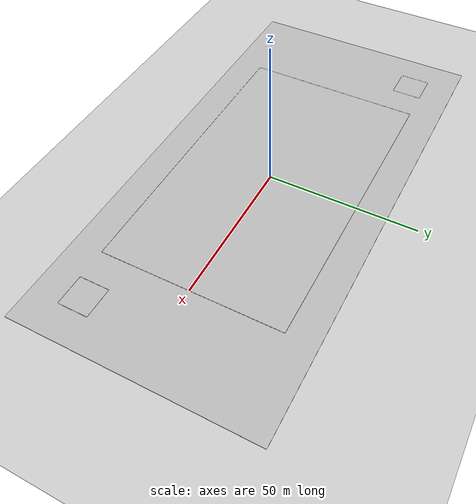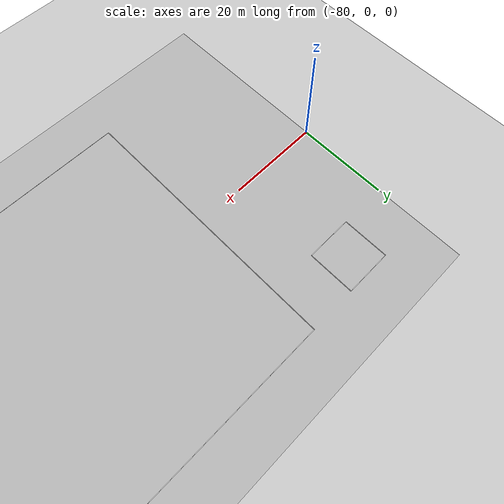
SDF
<?xml version="1.0" ?>
<!-- |    This document was autogenerated by xacro from src/mbzirc_gazebo/worlds/mbzirc_arena.world.xacro | -->
<!-- |    EDITING THIS FILE BY HAND IS NOT RECOMMENDED                                 | -->
<sdf version="1.4">
  <world name="default" xmlns:xacro="http://ros.org/wiki/xacro">
    <!-- A global light source -->
    <include>
      <uri>model://sun</uri>
    </include>
    <!-- A ground plane -->
    <include>
      <uri>model://ground_plane</uri>
    </include>
    <gui>
      <camera name="user_camera">
        <pose>72 -32 4 0 0.3 2.35619449019</pose>
      </camera>
    </gui>
    <!-- Field -->
    <model name="ground">
      <pose>0 0 0 0 0 0</pose>
      <static>true</static>
      <link name="link">
        <collision name="ground_collision">
          <geometry>
            <box>
              <size>160.0 80.0 0.15</size>
            </box>
          </geometry>
        </collision>
        <visual name="ground_visual">
          <geometry>
            <box>
              <size>160.0 80.0 0.15</size>
            </box>
          </geometry>
          <material>
            <script>
              <uri>/home/mickey/SourceCode/cmsvt_mbzirc/src/mbzirc_gazebo/worlds/materials/scripts</uri>
              <uri>/home/mickey/SourceCode/cmsvt_mbzirc/src/mbzirc_gazebo/worlds/materials/textures</uri>
              <name>MbzircArenaGround/Image</name>
            </script>
          </material>
        </visual>
      </link>
    </model>
    <model name="border_segment_100_0_30.0_0">
      <pose>0 30.0 0.08 0 0 0</pose>
      <static>true</static>
      <link name="link">
        <visual name="border_segment_100_0_30.0_0_visual">
          <geometry>
            <box>
              <size>100 0.1 0.01</size>
            </box>
          </geometry>
          <material>
            <ambient>1 1 1 1</ambient>
            <diffuse>1 1 1 1</diffuse>
            <specular>0.1 0.1 0.1 1</specular>
            <emissive>0 0 0 0</emissive>
          </material>
        </visual>
      </link>
    </model>
    <model name="border_segment_60_50.0_0_1.57079632679">
      <pose>50.0 0 0.08 0 0 1.57079632679</pose>
      <static>true</static>
      <link name="link">
        <visual name="border_segment_60_50.0_0_1.57079632679_visual">
          <geometry>
            <box>
              <size>60 0.1 0.01</size>
            </box>
          </geometry>
          <material>
            <ambient>1 1 1 1</ambient>
            <diffuse>1 1 1 1</diffuse>
            <specular>0.1 0.1 0.1 1</specular>
            <emissive>0 0 0 0</emissive>
          </material>
        </visual>
      </link>
    </model>
    <model name="border_segment_100_0_-30.0_0">
      <pose>0 -30.0 0.08 0 0 0</pose>
      <static>true</static>
      <link name="link">
        <visual name="border_segment_100_0_-30.0_0_visual">
          <geometry>
            <box>
              <size>100 0.1 0.01</size>
            </box>
          </geometry>
          <material>
            <ambient>1 1 1 1</ambient>
            <diffuse>1 1 1 1</diffuse>
            <specular>0.1 0.1 0.1 1</specular>
            <emissive>0 0 0 0</emissive>
          </material>
        </visual>
      </link>
    </model>
    <model name="border_segment_60_-50.0_0_1.57079632679">
      <pose>-50.0 0 0.08 0 0 1.57079632679</pose>
      <static>true</static>
      <link name="link">
        <visual name="border_segment_60_-50.0_0_1.57079632679_visual">
          <geometry>
            <box>
              <size>60 0.1 0.01</size>
            </box>
          </geometry>
          <material>
            <ambient>1 1 1 1</ambient>
            <diffuse>1 1 1 1</diffuse>
            <specular>0.1 0.1 0.1 1</specular>
            <emissive>0 0 0 0</emissive>
          </material>
        </visual>
      </link>
    </model>
    <model name="border_segment_10_65_-20.0_0">
      <pose>65 -20.0 0.08 0 0 0</pose>
      <static>true</static>
      <link name="link">
        <visual name="border_segment_10_65_-20.0_0_visual">
          <geometry>
            <box>
              <size>10 0.1 0.01</size>
            </box>
          </geometry>
          <material>
            <ambient>1 1 1 1</ambient>
            <diffuse>1 1 1 1</diffuse>
            <specular>0.1 0.1 0.1 1</specular>
            <emissive>0 0 0 0</emissive>
          </material>
        </visual>
      </link>
    </model>
    <model name="border_segment_10_70.0_-25_1.57079632679">
      <pose>70.0 -25 0.08 0 0 1.57079632679</pose>
      <static>true</static>
      <link name="link">
        <visual name="border_segment_10_70.0_-25_1.57079632679_visual">
          <geometry>
            <box>
              <size>10 0.1 0.01</size>
            </box>
          </geometry>
          <material>
            <ambient>1 1 1 1</ambient>
            <diffuse>1 1 1 1</diffuse>
            <specular>0.1 0.1 0.1 1</specular>
            <emissive>0 0 0 0</emissive>
          </material>
        </visual>
      </link>
    </model>
    <model name="border_segment_10_65_-30.0_0">
      <pose>65 -30.0 0.08 0 0 0</pose>
      <static>true</static>
      <link name="link">
        <visual name="border_segment_10_65_-30.0_0_visual">
          <geometry>
            <box>
              <size>10 0.1 0.01</size>
            </box>
          </geometry>
          <material>
            <ambient>1 1 1 1</ambient>
            <diffuse>1 1 1 1</diffuse>
            <specular>0.1 0.1 0.1 1</specular>
            <emissive>0 0 0 0</emissive>
          </material>
        </visual>
      </link>
    </model>
    <model name="border_segment_10_60.0_-25_1.57079632679">
      <pose>60.0 -25 0.08 0 0 1.57079632679</pose>
      <static>true</static>
      <link name="link">
        <visual name="border_segment_10_60.0_-25_1.57079632679_visual">
          <geometry>
            <box>
              <size>10 0.1 0.01</size>
            </box>
          </geometry>
          <material>
            <ambient>1 1 1 1</ambient>
            <diffuse>1 1 1 1</diffuse>
            <specular>0.1 0.1 0.1 1</specular>
            <emissive>0 0 0 0</emissive>
          </material>
        </visual>
      </link>
    </model>
    <model name="border_segment_10_-65_30.0_0">
      <pose>-65 30.0 0.08 0 0 0</pose>
      <static>true</static>
      <link name="link">
        <visual name="border_segment_10_-65_30.0_0_visual">
          <geometry>
            <box>
              <size>10 0.1 0.01</size>
            </box>
          </geometry>
          <material>
            <ambient>1 1 1 1</ambient>
            <diffuse>1 1 1 1</diffuse>
            <specular>0.1 0.1 0.1 1</specular>
            <emissive>0 0 0 0</emissive>
          </material>
        </visual>
      </link>
    </model>
    <model name="border_segment_10_-60.0_25_1.57079632679">
      <pose>-60.0 25 0.08 0 0 1.57079632679</pose>
      <static>true</static>
      <link name="link">
        <visual name="border_segment_10_-60.0_25_1.57079632679_visual">
          <geometry>
            <box>
              <size>10 0.1 0.01</size>
            </box>
          </geometry>
          <material>
            <ambient>1 1 1 1</ambient>
            <diffuse>1 1 1 1</diffuse>
            <specular>0.1 0.1 0.1 1</specular>
            <emissive>0 0 0 0</emissive>
          </material>
        </visual>
      </link>
    </model>
    <model name="border_segment_10_-65_20.0_0">
      <pose>-65 20.0 0.08 0 0 0</pose>
      <static>true</static>
      <link name="link">
        <visual name="border_segment_10_-65_20.0_0_visual">
          <geometry>
            <box>
              <size>10 0.1 0.01</size>
            </box>
          </geometry>
          <material>
            <ambient>1 1 1 1</ambient>
            <diffuse>1 1 1 1</diffuse>
            <specular>0.1 0.1 0.1 1</specular>
            <emissive>0 0 0 0</emissive>
          </material>
        </visual>
      </link>
    </model>
    <model name="border_segment_10_-70.0_25_1.57079632679">
      <pose>-70.0 25 0.08 0 0 1.57079632679</pose>
      <static>true</static>
      <link name="link">
        <visual name="border_segment_10_-70.0_25_1.57079632679_visual">
          <geometry>
            <box>
              <size>10 0.1 0.01</size>
            </box>
          </geometry>
          <material>
            <ambient>1 1 1 1</ambient>
            <diffuse>1 1 1 1</diffuse>
            <specular>0.1 0.1 0.1 1</specular>
            <emissive>0 0 0 0</emissive>
          </material>
        </visual>
      </link>
    </model>
  </world>
</sdf>
